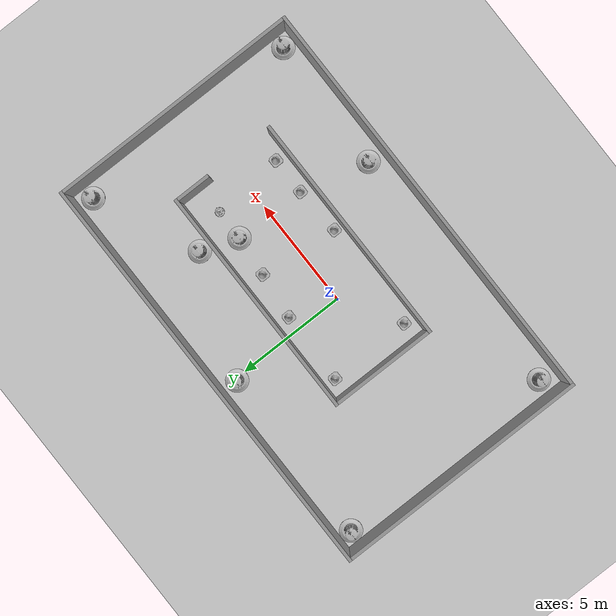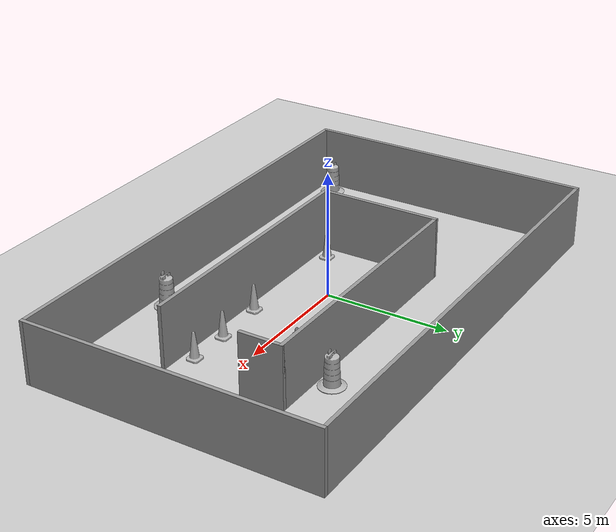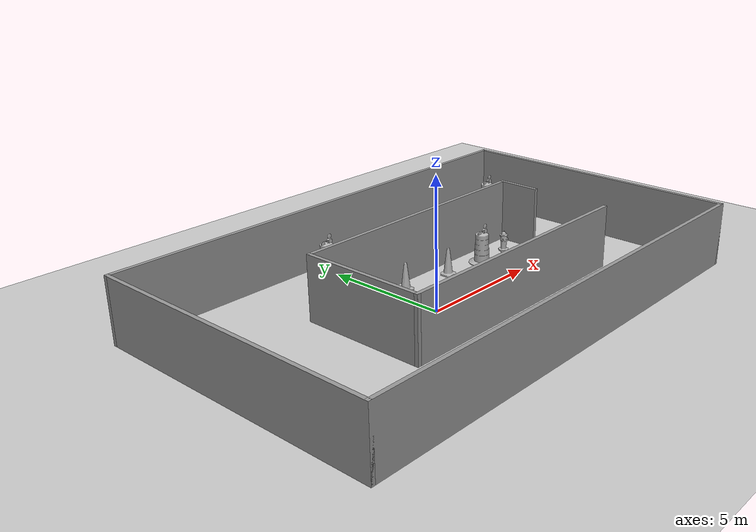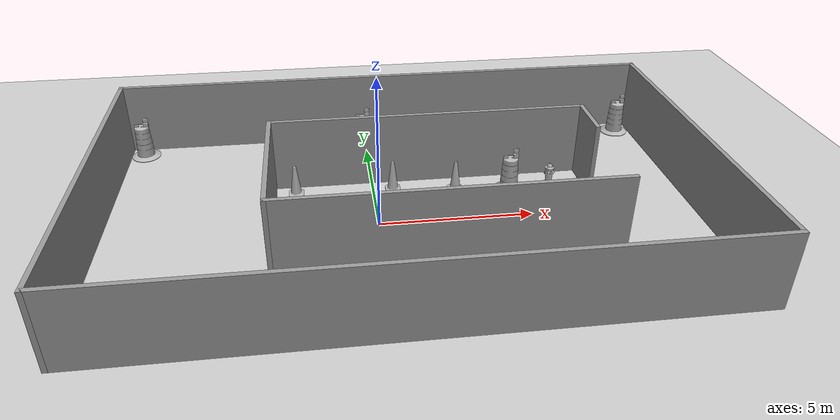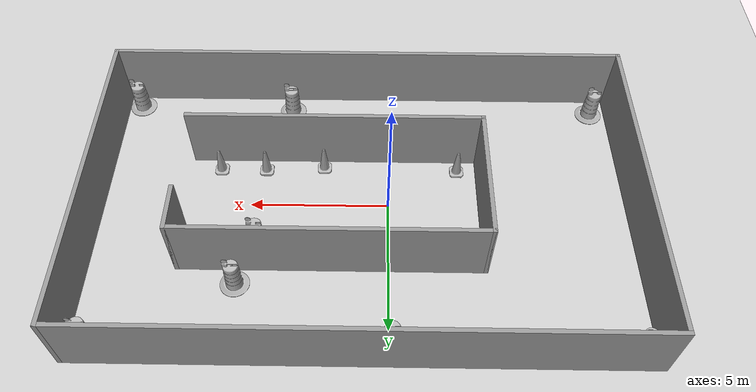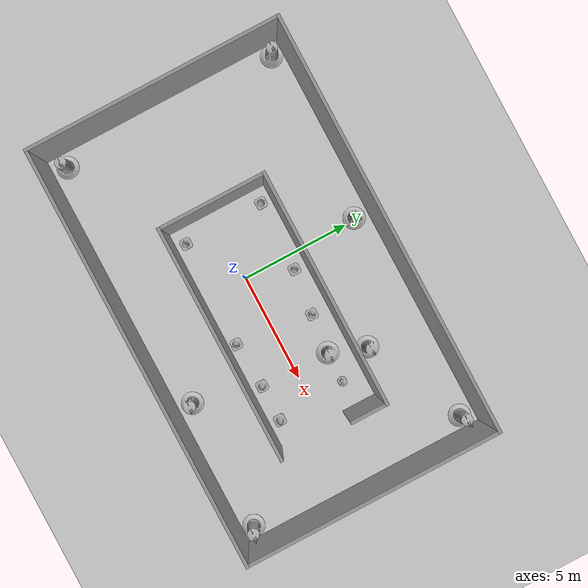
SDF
<sdf version="1.7">
 <world name="default">
  <light name="sun" type="directional">
   <pose>0 0 10 0 -0 0</pose>
   <diffuse>0.8 0.8 0.8 1</diffuse>
   <specular>0.2 0.2 0.2 1</specular>
   <attenuation>
    <range>1000</range>
    <constant>0.9</constant>
    <linear>0.01</linear>
    <quadratic>0.001</quadratic>
   </attenuation>
   <direction>-0.5 0.1 -0.9</direction>
   <spot><inner_angle>0</inner_angle><outer_angle>0</outer_angle><falloff>0</falloff></spot>
  </light>
  <model name="ground_plane">
   <static>1</static>
   <link name="link">
    <collision name="collision">
     <geometry><plane><normal>0 0 1</normal><size>100 100</size></plane></geometry>
     <surface><friction><ode><mu>100</mu><mu2>50</mu2></ode></friction></surface>
    </collision>
    <visual name="visual">
     <cast_shadows>0</cast_shadows>
     <geometry><plane><normal>0 0 1</normal><size>100 100</size></plane></geometry>
     <material>
      <script><uri>file://media/materials/scripts/gazebo.material</uri><name>Gazebo/Grey</name></script>
     </material>
    </visual>
   </link>
  </model>
  <gravity>0 0 -9.8</gravity>
  <magnetic_field>6e-06 2.3e-05 -4.2e-05</magnetic_field>
  <atmosphere type="adiabatic"/>
  <physics type="ode">
   <max_step_size>0.001</max_step_size>
   <real_time_factor>1</real_time_factor>
   <real_time_update_rate>1000</real_time_update_rate>
  </physics>
  <scene><ambient>0.4 0.4 0.4 1</ambient><background>0.7 0.7 0.7 1</background><shadows>1</shadows></scene>
  <spherical_coordinates>
   <surface_model>EARTH_WGS84</surface_model>
   <latitude_deg>0</latitude_deg>
   <longitude_deg>0</longitude_deg>
   <elevation>0</elevation>
   <heading_deg>0</heading_deg>
  </spherical_coordinates>
  <model name="box_house_v2">
   <pose>0.86 0.397473 0 0 -0 0</pose>
   <link name="Wall_1">
    <collision name="Wall_1_Collision">
     <geometry><box><size>10.75 0.15 2.5</size></box></geometry>
     <pose>0 0 1.25 0 -0 0</pose>
    </collision>
    <visual name="Wall_1_Visual">
     <pose>0 0 1.25 0 -0 0</pose>
     <geometry><box><size>10.75 0.15 2.5</size></box></geometry>
     <material>
      <script><uri>file://media/materials/scripts/gazebo.material</uri><name>Gazebo/Grey</name></script>
      <ambient>1 1 1 1</ambient>
     </material>
     <meta><layer>0</layer></meta>
    </visual>
    <pose>1.1 2.3 0 0 -0 0</pose>
   </link>
   <link name="Wall_18">
    <collision name="Wall_18_Collision">
     <geometry><box><size>19.25 0.15 2.5</size></box></geometry>
     <pose>0 0 1.25 0 -0 0</pose>
    </collision>
    <visual name="Wall_18_Visual">
     <pose>0 0 1.25 0 -0 0</pose>
     <geometry><box><size>19.25 0.15 2.5</size></box></geometry>
     <material>
      <script><uri>file://media/materials/scripts/gazebo.material</uri><name>Gazebo/Grey</name></script>
      <ambient>1 1 1 1</ambient>
     </material>
     <meta><layer>0</layer></meta>
    </visual>
    <pose>-0 5.8 0 0 -0 3.14159</pose>
   </link>
   <link name="Wall_19">
    <collision name="Wall_19_Collision">
     <geometry><box><size>11.75 0.15 2.5</size></box></geometry>
     <pose>0 0 1.25 0 -0 0</pose>
    </collision>
    <visual name="Wall_19_Visual">
     <pose>0 0 1.25 0 -0 0</pose>
     <geometry><box><size>11.75 0.15 2.5</size></box></geometry>
     <material>
      <script><uri>file://media/materials/scripts/gazebo.material</uri><name>Gazebo/Grey</name></script>
      <ambient>1 1 1 1</ambient>
     </material>
     <meta><layer>0</layer></meta>
    </visual>
    <pose>-9.55 0 0 0 -0 -1.5708</pose>
   </link>
   <link name="Wall_20">
    <collision name="Wall_20_Collision">
     <geometry><box><size>19.25 0.15 2.5</size></box></geometry>
     <pose>0 0 1.25 0 -0 0</pose>
    </collision>
    <visual name="Wall_20_Visual">
     <pose>0 0 1.25 0 -0 0</pose>
     <geometry><box><size>19.25 0.15 2.5</size></box></geometry>
     <material>
      <script><uri>file://media/materials/scripts/gazebo.material</uri><name>Gazebo/Grey</name></script>
      <ambient>1 1 1 1</ambient>
     </material>
     <meta><layer>0</layer></meta>
    </visual>
    <pose>-0 -5.8 0 0 -0 0</pose>
   </link>
   <link name="Wall_22">
    <collision name="Wall_22_Collision">
     <geometry><box><size>11.75 0.15 2.5</size></box></geometry>
     <pose>0 0 1.25 0 -0 0</pose>
    </collision>
    <visual name="Wall_22_Visual">
     <pose>0 0 1.25 0 -0 0</pose>
     <geometry><box><size>11.75 0.15 2.5</size></box></geometry>
     <material>
      <script><uri>file://media/materials/scripts/gazebo.material</uri><name>Gazebo/Grey</name></script>
      <ambient>1 1 1 1</ambient>
     </material>
     <meta><layer>0</layer></meta>
    </visual>
    <pose>9.55 0 0 0 -0 -1.5708</pose>
   </link>
   <link name="Wall_3">
    <collision name="Wall_3_Collision">
     <geometry><box><size>10.75 0.15 2.5</size></box></geometry>
     <pose>0 0 1.25 0 -0 0</pose>
    </collision>
    <visual name="Wall_3_Visual">
     <pose>0 0 1.25 0 -0 0</pose>
     <geometry><box><size>10.75 0.15 2.5</size></box></geometry>
     <material>
      <script><uri>file://media/materials/scripts/gazebo.material</uri><name>Gazebo/Grey</name></script>
      <ambient>1 1 1 1</ambient>
     </material>
     <meta><layer>0</layer></meta>
    </visual>
    <pose>1.1 -2.55 0 0 -0 3.14159</pose>
   </link>
   <link name="Wall_5">
    <collision name="Wall_5_Collision">
     <geometry><box><size>5 0.15 2.5</size></box></geometry>
     <pose>0 0 1.25 0 -0 0</pose>
    </collision>
    <visual name="Wall_5_Visual">
     <pose>0 0 1.25 0 -0 0</pose>
     <geometry><box><size>5 0.15 2.5</size></box></geometry>
     <material>
      <script><uri>file://media/materials/scripts/gazebo.material</uri><name>Gazebo/Grey</name></script>
      <ambient>1 1 1 1</ambient>
     </material>
     <meta><layer>0</layer></meta>
    </visual>
    <pose>-4.2 -0.125 0 0 -0 1.5708</pose>
   </link>
   <link name="Wall_7">
    <collision name="Wall_7_Collision">
     <geometry><box><size>1.75 0.15 2.5</size></box></geometry>
     <pose>0 0 1.25 0 -0 0</pose>
    </collision>
    <visual name="Wall_7_Visual">
     <pose>0 0 1.25 0 -0 0</pose>
     <geometry><box><size>1.75 0.15 2.5</size></box></geometry>
     <material>
      <script><uri>file://media/materials/scripts/gazebo.material</uri><name>Gazebo/Grey</name></script>
      <ambient>1 1 1 1</ambient>
     </material>
     <meta><layer>0</layer></meta>
    </visual>
    <pose>6.4 1.5 0 0 -0 -1.5708</pose>
   </link>
   <static>1</static>
  </model>
  <model name="fire_hydrant">
   <static>1</static>
   <link name="link">
    <collision name="collision">
     <geometry><mesh><uri>model://fire_hydrant/meshes/fire_hydrant.dae</uri></mesh></geometry>
    </collision>
    <visual name="visual">
     <geometry><mesh><uri>model://fire_hydrant/meshes/fire_hydrant.dae</uri></mesh></geometry>
    </visual>
   </link>
   <pose>5.98448 1.62216 0 0 -0 0</pose>
  </model>
  <model name="Construction Cone">
   <link name="link">
    <collision name="collision">
     <geometry>
      <mesh><scale>10 10 10</scale><uri>model://construction_cone/meshes/construction_cone.dae</uri></mesh>
     </geometry>
    </collision>
    <visual name="visual">
     <geometry>
      <mesh><scale>10 10 10</scale><uri>model://construction_cone/meshes/construction_cone.dae</uri></mesh>
     </geometry>
    </visual>
    <inertial>
     <inertia><ixx>1</ixx><ixy>0</ixy><ixz>0</ixz><iyy>1</iyy><iyz>0</iyz><izz>1</izz></inertia>
     <mass>1</mass>
    </inertial>
   </link>
   <pose>2.77557 1.83096 -0 0 -1e-06 0</pose>
  </model>
  <model name="Construction Cone_0">
   <link name="link">
    <collision name="collision">
     <geometry>
      <mesh><scale>10 10 10</scale><uri>model://construction_cone/meshes/construction_cone.dae</uri></mesh>
     </geometry>
    </collision>
    <visual name="visual">
     <geometry>
      <mesh><scale>10 10 10</scale><uri>model://construction_cone/meshes/construction_cone.dae</uri></mesh>
     </geometry>
    </visual>
    <inertial>
     <inertia><ixx>1</ixx><ixy>0</ixy><ixz>0</ixz><iyy>1</iyy><iyz>0</iyz><izz>1</izz></inertia>
     <mass>1</mass>
    </inertial>
   </link>
   <pose>-2.60739 2.15418 -0 0 -0 0</pose>
  </model>
  <model name="Construction Cone_1">
   <link name="link">
    <collision name="collision">
     <geometry>
      <mesh><scale>10 10 10</scale><uri>model://construction_cone/meshes/construction_cone.dae</uri></mesh>
     </geometry>
    </collision>
    <visual name="visual">
     <geometry>
      <mesh><scale>10 10 10</scale><uri>model://construction_cone/meshes/construction_cone.dae</uri></mesh>
     </geometry>
    </visual>
    <inertial>
     <inertia><ixx>1</ixx><ixy>0</ixy><ixz>0</ixz><iyy>1</iyy><iyz>0</iyz><izz>1</izz></inertia>
     <mass>1</mass>
    </inertial>
   </link>
   <pose>-2.57035 -1.61287 -9e-06 -5e-06 -0 -0</pose>
  </model>
  <model name="Construction Barrel">
   <link name="link">
    <inertial>
     <pose>0 0 0.4 0 -0 0</pose>
     <mass>500</mass>
     <inertia><ixx>51.2096</ixx><iyy>51.2096</iyy><izz>25</izz><ixy>0</ixy><ixz>0</ixz><iyz>0</iyz></inertia>
    </inertial>
    <collision name="collision">
     <geometry><mesh><uri>model://construction_barrel/meshes/construction_barrel.dae</uri></mesh></geometry>
    </collision>
    <visual name="visual">
     <geometry><mesh><uri>model://construction_barrel/meshes/construction_barrel.dae</uri></mesh></geometry>
    </visual>
   </link>
   <pose>4.60714 1.65278 -0 0 0 -2.1e-05</pose>
  </model>
  <model name="Construction Cone_2">
   <link name="link">
    <collision name="collision">
     <geometry>
      <mesh><scale>10 10 10</scale><uri>model://construction_cone/meshes/construction_cone.dae</uri></mesh>
     </geometry>
    </collision>
    <visual name="visual">
     <geometry>
      <mesh><scale>10 10 10</scale><uri>model://construction_cone/meshes/construction_cone.dae</uri></mesh>
     </geometry>
    </visual>
    <inertial>
     <inertia><ixx>1</ixx><ixy>0</ixy><ixz>0</ixz><iyy>1</iyy><iyz>0</iyz><izz>1</izz></inertia>
     <mass>1</mass>
    </inertial>
   </link>
   <pose>6.2422 -1.60698 -0 0 -1e-06 0</pose>
  </model>
  <model name="Construction Cone_3">
   <link name="link">
    <collision name="collision">
     <geometry>
      <mesh><scale>10 10 10</scale><uri>model://construction_cone/meshes/construction_cone.dae</uri></mesh>
     </geometry>
    </collision>
    <visual name="visual">
     <geometry>
      <mesh><scale>10 10 10</scale><uri>model://construction_cone/meshes/construction_cone.dae</uri></mesh>
     </geometry>
    </visual>
    <inertial>
     <inertia><ixx>1</ixx><ixy>0</ixy><ixz>0</ixz><iyy>1</iyy><iyz>0</iyz><izz>1</izz></inertia>
     <mass>1</mass>
    </inertial>
   </link>
   <pose>4.54866 -1.59886 -0 0 -0 0</pose>
  </model>
  <model name="Construction Cone_4">
   <link name="link">
    <collision name="collision">
     <geometry>
      <mesh><scale>10 10 10</scale><uri>model://construction_cone/meshes/construction_cone.dae</uri></mesh>
     </geometry>
    </collision>
    <visual name="visual">
     <geometry>
      <mesh><scale>10 10 10</scale><uri>model://construction_cone/meshes/construction_cone.dae</uri></mesh>
     </geometry>
    </visual>
    <inertial>
     <inertia><ixx>1</ixx><ixy>0</ixy><ixz>0</ixz><iyy>1</iyy><iyz>0</iyz><izz>1</izz></inertia>
     <mass>1</mass>
    </inertial>
   </link>
   <pose>2.38276 -1.73142 -0 0 -0 0</pose>
  </model>
  <model name="Construction Cone_5">
   <link name="link">
    <collision name="collision">
     <geometry>
      <mesh><scale>10 10 10</scale><uri>model://construction_cone/meshes/construction_cone.dae</uri></mesh>
     </geometry>
    </collision>
    <visual name="visual">
     <geometry>
      <mesh><scale>10 10 10</scale><uri>model://construction_cone/meshes/construction_cone.dae</uri></mesh>
     </geometry>
    </visual>
    <inertial>
     <inertia><ixx>1</ixx><ixy>0</ixy><ixz>0</ixz><iyy>1</iyy><iyz>0</iyz><izz>1</izz></inertia>
     <mass>1</mass>
    </inertial>
   </link>
   <pose>0.663677 2.08188 0 -0 -0 -0</pose>
  </model>
  <model name="Construction Barrel_0">
   <link name="link">
    <inertial>
     <pose>0 0 0.4 0 -0 0</pose>
     <mass>500</mass>
     <inertia><ixx>51.2096</ixx><iyy>51.2096</iyy><izz>25</izz><ixy>0</ixy><ixz>0</ixz><iyz>0</iyz></inertia>
    </inertial>
    <collision name="collision">
     <geometry><mesh><uri>model://construction_barrel/meshes/construction_barrel.dae</uri></mesh></geometry>
    </collision>
    <visual name="visual">
     <geometry><mesh><uri>model://construction_barrel/meshes/construction_barrel.dae</uri></mesh></geometry>
    </visual>
   </link>
   <pose>9.78315 5.49545 -0 1e-06 -1e-06 -1.2e-05</pose>
  </model>
  <model name="Construction Barrel_1">
   <link name="link">
    <inertial>
     <pose>0 0 0.4 0 -0 0</pose>
     <mass>500</mass>
     <inertia><ixx>51.2096</ixx><iyy>51.2096</iyy><izz>25</izz><ixy>0</ixy><ixz>0</ixz><iyz>0</iyz></inertia>
    </inertial>
    <collision name="collision">
     <geometry><mesh><uri>model://construction_barrel/meshes/construction_barrel.dae</uri></mesh></geometry>
    </collision>
    <visual name="visual">
     <geometry><mesh><uri>model://construction_barrel/meshes/construction_barrel.dae</uri></mesh></geometry>
    </visual>
   </link>
   <pose>9.81597 -4.81744 -3e-06 6e-06 1.1e-05 0.000211</pose>
  </model>
  <model name="Construction Barrel_2">
   <link name="link">
    <inertial>
     <pose>0 0 0.4 0 -0 0</pose>
     <mass>500</mass>
     <inertia><ixx>51.2096</ixx><iyy>51.2096</iyy><izz>25</izz><ixy>0</ixy><ixz>0</ixz><iyz>0</iyz></inertia>
    </inertial>
    <collision name="collision">
     <geometry><mesh><uri>model://construction_barrel/meshes/construction_barrel.dae</uri></mesh></geometry>
    </collision>
    <visual name="visual">
     <geometry><mesh><uri>model://construction_barrel/meshes/construction_barrel.dae</uri></mesh></geometry>
    </visual>
   </link>
   <pose>-8.10459 5.61237 -0 0 -0 0.000141</pose>
  </model>
  <model name="Construction Barrel_3">
   <link name="link">
    <inertial>
     <pose>0 0 0.4 0 -0 0</pose>
     <mass>500</mass>
     <inertia><ixx>51.2096</ixx><iyy>51.2096</iyy><izz>25</izz><ixy>0</ixy><ixz>0</ixz><iyz>0</iyz></inertia>
    </inertial>
    <collision name="collision">
     <geometry><mesh><uri>model://construction_barrel/meshes/construction_barrel.dae</uri></mesh></geometry>
    </collision>
    <visual name="visual">
     <geometry><mesh><uri>model://construction_barrel/meshes/construction_barrel.dae</uri></mesh></geometry>
    </visual>
   </link>
   <pose>-7.99995 -4.63747 -1e-06 3e-06 1e-05 -7e-06</pose>
  </model>
  <model name="Construction Barrel_4">
   <link name="link">
    <inertial>
     <pose>0 0 0.4 0 -0 0</pose>
     <mass>500</mass>
     <inertia><ixx>51.2096</ixx><iyy>51.2096</iyy><izz>25</izz><ixy>0</ixy><ixz>0</ixz><iyz>0</iyz></inertia>
    </inertial>
    <collision name="collision">
     <geometry><mesh><uri>model://construction_barrel/meshes/construction_barrel.dae</uri></mesh></geometry>
    </collision>
    <visual name="visual">
     <geometry><mesh><uri>model://construction_barrel/meshes/construction_barrel.dae</uri></mesh></geometry>
    </visual>
   </link>
   <pose>-0.095922 5.47755 1e-06 2e-06 3e-06 -6e-06</pose>
  </model>
  <model name="Construction Barrel_5">
   <link name="link">
    <inertial>
     <pose>0 0 0.4 0 -0 0</pose>
     <mass>500</mass>
     <inertia><ixx>51.2096</ixx><iyy>51.2096</iyy><izz>25</izz><ixy>0</ixy><ixz>0</ixz><iyz>0</iyz></inertia>
    </inertial>
    <collision name="collision">
     <geometry><mesh><uri>model://construction_barrel/meshes/construction_barrel.dae</uri></mesh></geometry>
    </collision>
    <visual name="visual">
     <geometry><mesh><uri>model://construction_barrel/meshes/construction_barrel.dae</uri></mesh></geometry>
    </visual>
   </link>
   <pose>3.76942 -4.66942 0 0 0 -3e-06</pose>
  </model>
  <model name="Construction Barrel_6">
   <link name="link">
    <inertial>
     <pose>0 0 0.4 0 -0 0</pose>
     <mass>500</mass>
     <inertia><ixx>51.2096</ixx><iyy>51.2096</iyy><izz>25</izz><ixy>0</ixy><ixz>0</ixz><iyz>0</iyz></inertia>
    </inertial>
    <collision name="collision">
     <geometry><mesh><uri>model://construction_barrel/meshes/construction_barrel.dae</uri></mesh></geometry>
    </collision>
    <visual name="visual">
     <geometry><mesh><uri>model://construction_barrel/meshes/construction_barrel.dae</uri></mesh></geometry>
    </visual>
   </link>
   <pose>5.20898 3.32906 -1e-06 3e-06 -2e-06 -2e-06</pose>
  </model>
 </world>
</sdf>
